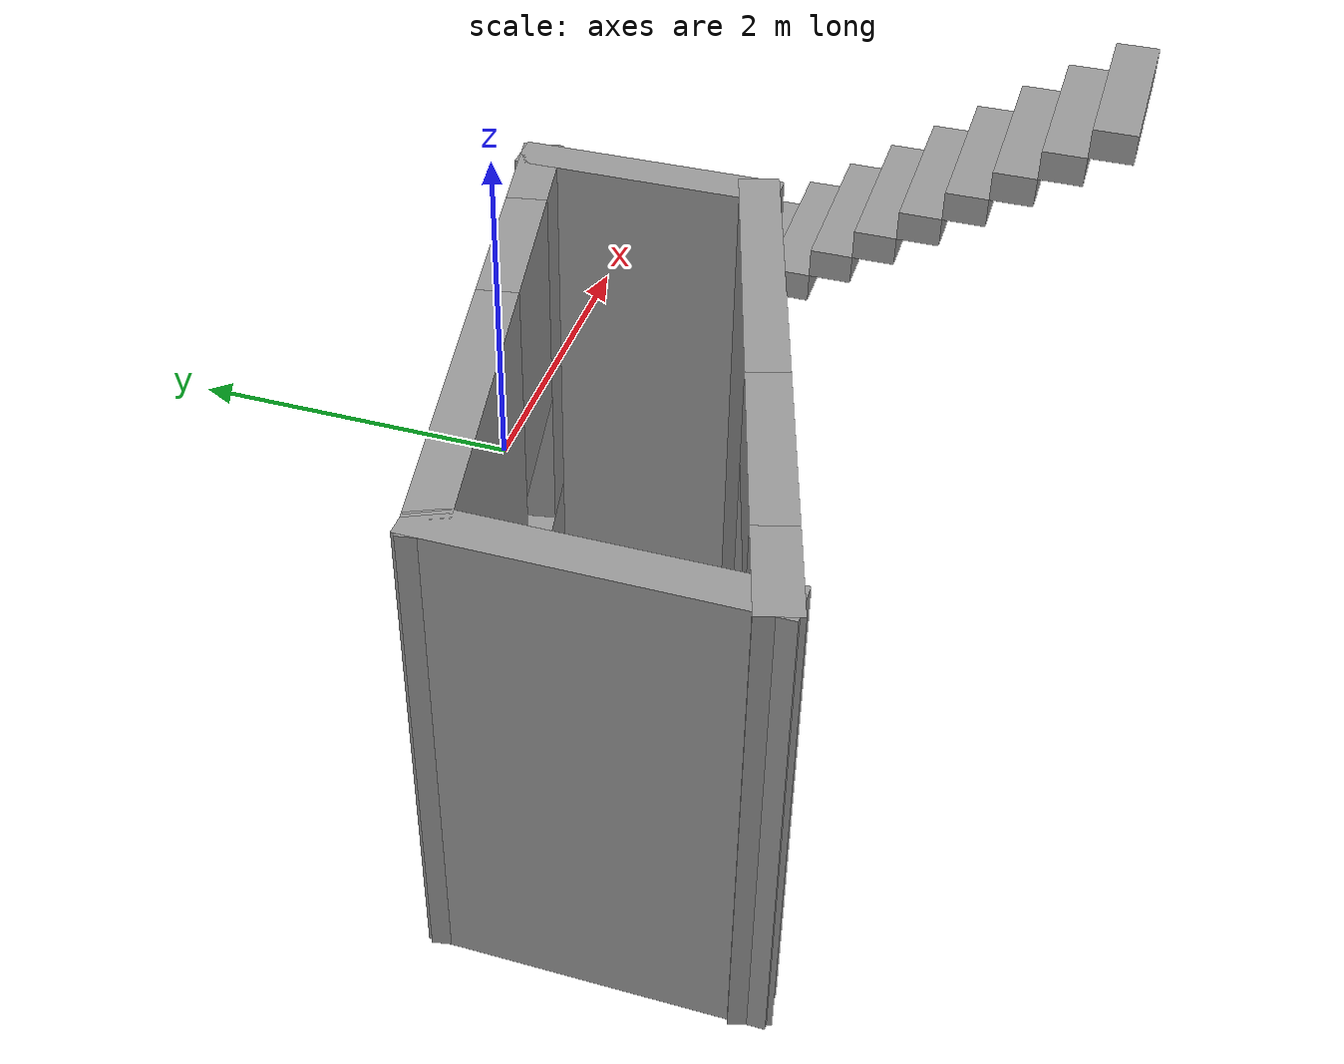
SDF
<?xml version='1.0'?>
<sdf version='1.4'>
  <model name='aaa'>
    <link name='Stairs_0'>
      <visual name='Stairs_0_Visual_0'>
        <pose>0.95 0.043333 0.083333 0 -0 0</pose>
        <geometry>
          <box>
            <size>1 0.233333 0.166667</size>
          </box>
        </geometry>
        <material>
          <script>
            <uri>file://media/materials/scripts/gazebo.material</uri>
            <name>Gazebo/Grey</name>
          </script>
        </material>
      </visual>
      <collision name='Stairs_0_Collision_0'>
        <geometry>
          <box>
            <size>1 0.233333 0.166667</size>
          </box>
        </geometry>
        <pose>0.95 0.043333 0.083333 0 -0 0</pose>
      </collision>
      <visual name='Stairs_0_Visual_1'>
        <pose>0.95 -0.19 0.25 0 -0 0</pose>
        <geometry>
          <box>
            <size>1 0.233335 0.166668</size>
          </box>
        </geometry>
        <material>
          <script>
            <uri>file://media/materials/scripts/gazebo.material</uri>
            <name>Gazebo/Grey</name>
          </script>
        </material>
      </visual>
      <collision name='Stairs_0_Collision_1'>
        <geometry>
          <box>
            <size>1 0.233335 0.166668</size>
          </box>
        </geometry>
        <pose>0.95 -0.19 0.25 0 -0 0</pose>
      </collision>
      <visual name='Stairs_0_Visual_2'>
        <pose>0.95 -0.423333 0.416667 0 -0 0</pose>
        <geometry>
          <box>
            <size>1 0.233335 0.166668</size>
          </box>
        </geometry>
        <material>
          <script>
            <uri>file://media/materials/scripts/gazebo.material</uri>
            <name>Gazebo/Grey</name>
          </script>
        </material>
      </visual>
      <collision name='Stairs_0_Collision_2'>
        <geometry>
          <box>
            <size>1 0.233335 0.166668</size>
          </box>
        </geometry>
        <pose>0.95 -0.423333 0.416667 0 -0 0</pose>
      </collision>
      <visual name='Stairs_0_Visual_3'>
        <pose>0.95 -0.656667 0.583333 0 -0 0</pose>
        <geometry>
          <box>
            <size>1 0.233335 0.166668</size>
          </box>
        </geometry>
        <material>
          <script>
            <uri>file://media/materials/scripts/gazebo.material</uri>
            <name>Gazebo/Grey</name>
          </script>
        </material>
      </visual>
      <collision name='Stairs_0_Collision_3'>
        <geometry>
          <box>
            <size>1 0.233335 0.166668</size>
          </box>
        </geometry>
        <pose>0.95 -0.656667 0.583333 0 -0 0</pose>
      </collision>
      <visual name='Stairs_0_Visual_4'>
        <pose>0.95 -0.89 0.75 0 -0 0</pose>
        <geometry>
          <box>
            <size>1 0.233335 0.166668</size>
          </box>
        </geometry>
        <material>
          <script>
            <uri>file://media/materials/scripts/gazebo.material</uri>
            <name>Gazebo/Grey</name>
          </script>
        </material>
      </visual>
      <collision name='Stairs_0_Collision_4'>
        <geometry>
          <box>
            <size>1 0.233335 0.166668</size>
          </box>
        </geometry>
        <pose>0.95 -0.89 0.75 0 -0 0</pose>
      </collision>
      <visual name='Stairs_0_Visual_5'>
        <pose>0.95 -1.12333 0.916667 0 -0 0</pose>
        <geometry>
          <box>
            <size>1 0.233335 0.166668</size>
          </box>
        </geometry>
        <material>
          <script>
            <uri>file://media/materials/scripts/gazebo.material</uri>
            <name>Gazebo/Grey</name>
          </script>
        </material>
      </visual>
      <collision name='Stairs_0_Collision_5'>
        <geometry>
          <box>
            <size>1 0.233335 0.166668</size>
          </box>
        </geometry>
        <pose>0.95 -1.12333 0.916667 0 -0 0</pose>
      </collision>
      <visual name='Stairs_0_Visual_6'>
        <pose>0.95 -1.35667 1.08333 0 -0 0</pose>
        <geometry>
          <box>
            <size>1 0.233335 0.166668</size>
          </box>
        </geometry>
        <material>
          <script>
            <uri>file://media/materials/scripts/gazebo.material</uri>
            <name>Gazebo/Grey</name>
          </script>
        </material>
      </visual>
      <collision name='Stairs_0_Collision_6'>
        <geometry>
          <box>
            <size>1 0.233335 0.166668</size>
          </box>
        </geometry>
        <pose>0.95 -1.35667 1.08333 0 -0 0</pose>
      </collision>
      <visual name='Stairs_0_Visual_7'>
        <pose>0.95 -1.59 1.25 0 -0 0</pose>
        <geometry>
          <box>
            <size>1 0.233335 0.166668</size>
          </box>
        </geometry>
        <material>
          <script>
            <uri>file://media/materials/scripts/gazebo.material</uri>
            <name>Gazebo/Grey</name>
          </script>
        </material>
      </visual>
      <collision name='Stairs_0_Collision_7'>
        <geometry>
          <box>
            <size>1 0.233335 0.166668</size>
          </box>
        </geometry>
        <pose>0.95 -1.59 1.25 0 -0 0</pose>
      </collision>
      <visual name='Stairs_0_Visual_8'>
        <pose>0.95 -1.82333 1.41667 0 -0 0</pose>
        <geometry>
          <box>
            <size>1 0.233335 0.166668</size>
          </box>
        </geometry>
        <material>
          <script>
            <uri>file://media/materials/scripts/gazebo.material</uri>
            <name>Gazebo/Grey</name>
          </script>
        </material>
      </visual>
      <collision name='Stairs_0_Collision_8'>
        <geometry>
          <box>
            <size>1 0.233335 0.166668</size>
          </box>
        </geometry>
        <pose>0.95 -1.82333 1.41667 0 -0 0</pose>
      </collision>
      <visual name='Stairs_0_Visual_9'>
        <pose>0.95 -2.05667 1.58333 0 -0 0</pose>
        <geometry>
          <box>
            <size>1 0.233335 0.166668</size>
          </box>
        </geometry>
        <material>
          <script>
            <uri>file://media/materials/scripts/gazebo.material</uri>
            <name>Gazebo/Grey</name>
          </script>
        </material>
      </visual>
      <collision name='Stairs_0_Collision_9'>
        <geometry>
          <box>
            <size>1 0.233335 0.166668</size>
          </box>
        </geometry>
        <pose>0.95 -2.05667 1.58333 0 -0 0</pose>
      </collision>
      <visual name='Stairs_0_Visual_10'>
        <pose>0.95 -2.29 1.75 0 -0 0</pose>
        <geometry>
          <box>
            <size>1 0.233335 0.166668</size>
          </box>
        </geometry>
        <material>
          <script>
            <uri>file://media/materials/scripts/gazebo.material</uri>
            <name>Gazebo/Grey</name>
          </script>
        </material>
      </visual>
      <collision name='Stairs_0_Collision_10'>
        <geometry>
          <box>
            <size>1 0.233335 0.166668</size>
          </box>
        </geometry>
        <pose>0.95 -2.29 1.75 0 -0 0</pose>
      </collision>
      <visual name='Stairs_0_Visual_11'>
        <pose>0.95 -2.52333 1.91667 0 -0 0</pose>
        <geometry>
          <box>
            <size>1 0.233335 0.166668</size>
          </box>
        </geometry>
        <material>
          <script>
            <uri>file://media/materials/scripts/gazebo.material</uri>
            <name>Gazebo/Grey</name>
          </script>
        </material>
      </visual>
      <collision name='Stairs_0_Collision_11'>
        <geometry>
          <box>
            <size>1 0.233335 0.166668</size>
          </box>
        </geometry>
        <pose>0.95 -2.52333 1.91667 0 -0 0</pose>
      </collision>
      <visual name='Stairs_0_Visual_12'>
        <pose>0.95 -2.75667 2.08333 0 -0 0</pose>
        <geometry>
          <box>
            <size>1 0.233335 0.166668</size>
          </box>
        </geometry>
        <material>
          <script>
            <uri>file://media/materials/scripts/gazebo.material</uri>
            <name>Gazebo/Grey</name>
          </script>
        </material>
      </visual>
      <collision name='Stairs_0_Collision_12'>
        <geometry>
          <box>
            <size>1 0.233335 0.166668</size>
          </box>
        </geometry>
        <pose>0.95 -2.75667 2.08333 0 -0 0</pose>
      </collision>
      <visual name='Stairs_0_Visual_13'>
        <pose>0.95 -2.99 2.25 0 -0 0</pose>
        <geometry>
          <box>
            <size>1 0.233335 0.166668</size>
          </box>
        </geometry>
        <material>
          <script>
            <uri>file://media/materials/scripts/gazebo.material</uri>
            <name>Gazebo/Grey</name>
          </script>
        </material>
      </visual>
      <collision name='Stairs_0_Collision_13'>
        <geometry>
          <box>
            <size>1 0.233335 0.166668</size>
          </box>
        </geometry>
        <pose>0.95 -2.99 2.25 0 -0 0</pose>
      </collision>
      <visual name='Stairs_0_Visual_14'>
        <pose>0.95 -3.22333 2.41667 0 -0 0</pose>
        <geometry>
          <box>
            <size>1 0.233335 0.166668</size>
          </box>
        </geometry>
        <material>
          <script>
            <uri>file://media/materials/scripts/gazebo.material</uri>
            <name>Gazebo/Grey</name>
          </script>
        </material>
      </visual>
      <collision name='Stairs_0_Collision_14'>
        <geometry>
          <box>
            <size>1 0.233335 0.166668</size>
          </box>
        </geometry>
        <pose>0.95 -3.22333 2.41667 0 -0 0</pose>
      </collision>
    </link>
    <link name='Wall_0'>
      <pose>-2.035 -2.055 0 0 0 -2.85904</pose>
      <visual name='Wall_0_Visual_0'>
        <pose>-0.755545 0 1.25 0 -0 0</pose>
        <geometry>
          <box>
            <size>1.59411 0.2 2.5</size>
          </box>
        </geometry>
        <material>
          <script>
            <uri>file://media/materials/scripts/gazebo.material</uri>
            <name>Gazebo/Grey</name>
          </script>
        </material>
      </visual>
      <collision name='Wall_0_Collision_0'>
        <geometry>
          <box>
            <size>1.59411 0.2 2.5</size>
          </box>
        </geometry>
        <pose>-0.755545 0 1.25 0 -0 0</pose>
      </collision>
      <visual name='Wall_0_Visual_1'>
        <pose>1.29706 0 1.25 0 -0 0</pose>
        <geometry>
          <box>
            <size>0.51109 0.2 2.5</size>
          </box>
        </geometry>
        <material>
          <script>
            <uri>file://media/materials/scripts/gazebo.material</uri>
            <name>Gazebo/Grey</name>
          </script>
        </material>
      </visual>
      <collision name='Wall_0_Collision_1'>
        <geometry>
          <box>
            <size>0.51109 0.2 2.5</size>
          </box>
        </geometry>
        <pose>1.29706 0 1.25 0 -0 0</pose>
      </collision>
      <visual name='Wall_0_Visual_2'>
        <pose>0.541511 0 2.25 0 -0 0</pose>
        <geometry>
          <box>
            <size>1 0.2 0.5</size>
          </box>
        </geometry>
        <material>
          <script>
            <uri>file://media/materials/scripts/gazebo.material</uri>
            <name>Gazebo/Grey</name>
          </script>
        </material>
      </visual>
      <collision name='Wall_0_Collision_2'>
        <geometry>
          <box>
            <size>1 0.2 0.5</size>
          </box>
        </geometry>
        <pose>0.541511 0 2.25 0 -0 0</pose>
      </collision>
    </link>
    <link name='Wall_1'>
      <collision name='Wall_1_Collision'>
        <geometry>
          <box>
            <size>1.61 0.2 2.5</size>
          </box>
        </geometry>
        <pose>0 0 1.25 0 -0 0</pose>
      </collision>
      <visual name='Wall_1_Visual'>
        <pose>0 0 1.25 0 -0 0</pose>
        <geometry>
          <box>
            <size>1.61 0.2 2.5</size>
          </box>
        </geometry>
        <material>
          <script>
            <uri>file://media/materials/scripts/gazebo.material</uri>
            <name>Gazebo/Grey</name>
          </script>
        </material>
      </visual>
      <velocity_decay>
        <linear>0</linear>
        <angular>0</angular>
      </velocity_decay>
      <pose>-3.43 -1.755 0 0 -0 1.5708</pose>
    </link>
    <link name='Wall_2'>
      <pose>-2.04 -0.79 0 0 -0 0.184914</pose>
      <visual name='Wall_2_Visual_0'>
        <pose>-0.662486 0 1.25 0 -0 0</pose>
        <geometry>
          <box>
            <size>1.70324 0.2 2.5</size>
          </box>
        </geometry>
        <material>
          <script>
            <uri>file://media/materials/scripts/gazebo.material</uri>
            <name>Gazebo/Grey</name>
          </script>
        </material>
      </visual>
      <collision name='Wall_2_Collision_0'>
        <geometry>
          <box>
            <size>1.70324 0.2 2.5</size>
          </box>
        </geometry>
        <pose>-0.662486 0 1.25 0 -0 0</pose>
      </collision>
      <visual name='Wall_2_Visual_1'>
        <pose>0.851621 0 0.25 0 -0 0</pose>
        <geometry>
          <box>
            <size>1.32497 0.2 0.5</size>
          </box>
        </geometry>
        <material>
          <script>
            <uri>file://media/materials/scripts/gazebo.material</uri>
            <name>Gazebo/Grey</name>
          </script>
        </material>
      </visual>
      <collision name='Wall_2_Collision_1'>
        <geometry>
          <box>
            <size>1.32497 0.2 0.5</size>
          </box>
        </geometry>
        <pose>0.851621 0 0.25 0 -0 0</pose>
      </collision>
      <visual name='Wall_2_Visual_2'>
        <pose>1.25162 0 1.5 0 -0 0</pose>
        <geometry>
          <box>
            <size>0.524973 0.2 2</size>
          </box>
        </geometry>
        <material>
          <script>
            <uri>file://media/materials/scripts/gazebo.material</uri>
            <name>Gazebo/Grey</name>
          </script>
        </material>
      </visual>
      <collision name='Wall_2_Collision_2'>
        <geometry>
          <box>
            <size>0.524973 0.2 2</size>
          </box>
        </geometry>
        <pose>1.25162 0 1.5 0 -0 0</pose>
      </collision>
      <visual name='Wall_2_Visual_3'>
        <pose>0.589135 0 1.9 0 -0 0</pose>
        <geometry>
          <box>
            <size>0.8 0.2 1.2</size>
          </box>
        </geometry>
        <material>
          <script>
            <uri>file://media/materials/scripts/gazebo.material</uri>
            <name>Gazebo/Grey</name>
          </script>
        </material>
      </visual>
      <collision name='Wall_2_Collision_3'>
        <geometry>
          <box>
            <size>0.8 0.2 1.2</size>
          </box>
        </geometry>
        <pose>0.589135 0 1.9 0 -0 0</pose>
      </collision>
    </link>
    <link name='Wall_3'>
      <collision name='Wall_3_Collision'>
        <geometry>
          <box>
            <size>1.32004 0.2 2.5</size>
          </box>
        </geometry>
        <pose>0 0 1.25 0 -0 0</pose>
      </collision>
      <visual name='Wall_3_Visual'>
        <pose>0 0 1.25 0 -0 0</pose>
        <geometry>
          <box>
            <size>1.32004 0.2 2.5</size>
          </box>
        </geometry>
        <material>
          <script>
            <uri>file://media/materials/scripts/gazebo.material</uri>
            <name>Gazebo/Grey</name>
          </script>
        </material>
      </visual>
      <velocity_decay>
        <linear>0</linear>
        <angular>0</angular>
      </velocity_decay>
      <pose>-0.645 -1.09 0 0 0 -1.56187</pose>
    </link>
    <static>1</static>
  </model>
</sdf>
